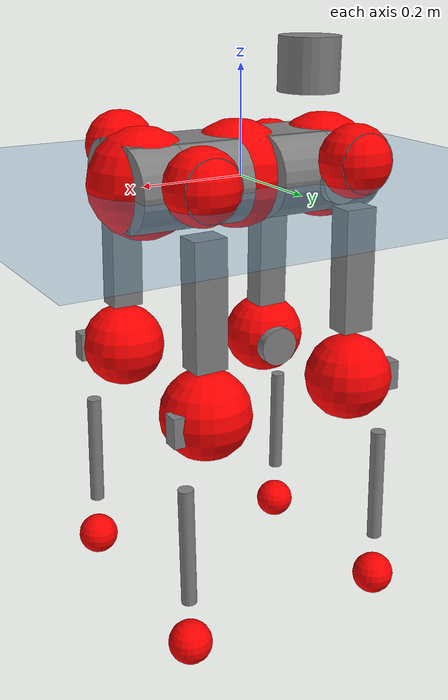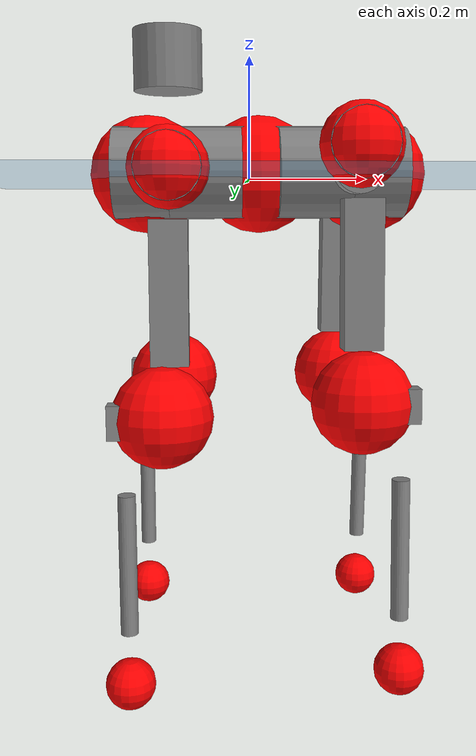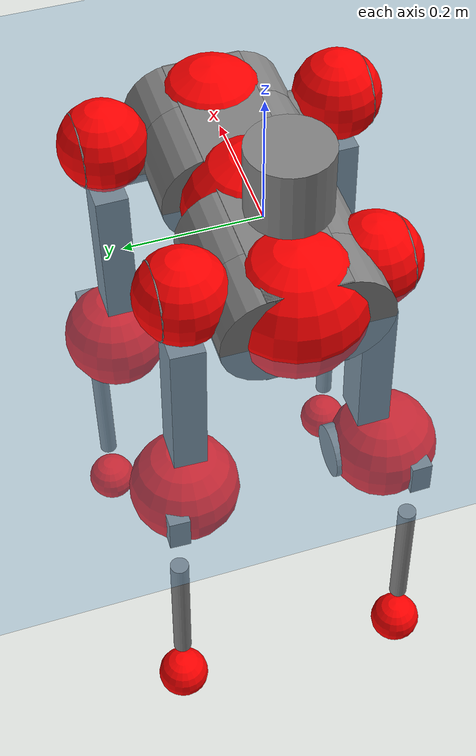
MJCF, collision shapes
<mujoco model="anymal_c">
  <compiler angle="radian" assetdir="assets" balanceinertia="true" inertiafromgeom="false"/>

  <option timestep="0.005" density="1.2" viscosity="2e-05"/>

  <size nkey="1"/>

  <visual>
    <quality shadowsize="8192"/>
    <map shadowclip="0.5"/>
  </visual>

  <default>
    <default class="/">
      <material specular="0" shininess="0.25"/>
      <geom contype="0" conaffinity="0" group="1" solref="-1000 -80"/>
      <site size="0.01 0.005 0.005" group="5"/>
      <general forcelimited="true" forcerange="-80 80" biastype="affine" gainprm="80" biasprm="0 -80 -2"/>
      <default class="anymal_c">
        <joint armature="0.01" damping="0.01" frictionloss="0.1"/>
        <default class="visual">
          <geom type="mesh" group="2"/>
          <default class="visual_zflip"/>
        </default>
        <default class="collision">
          <geom type="cylinder" group="3"/>
          <default class="foot">
            <geom size="0.03 0 0" type="sphere" condim="6" priority="1" friction="0.8 0.02 0.01" solimp="0.015 1 0.03"/>
          </default>
        </default>
      </default>
      <default class="reward_collision_sphere">
        <geom group="5" rgba="1 0 0 1"/>
      </default>
    </default>
  </default>

  <asset>
    <texture type="skybox" colorspace="auto" name="//unnamed_texture_0" builtin="gradient" rgb1="0.95 0.95 0.95" rgb2="0.95 0.95 0.95" width="100" height="600"/>
    <texture type="2d" colorspace="auto" name="texplane" builtin="checker" rgb1="0.345 0.575 0.748" rgb2="0.345 0.575 0.748" markrgb="1 1 1" width="512" height="512"/>
    <texture type="2d" colorspace="linear" name="base" file="base.png"/>
    <texture type="2d" colorspace="linear" name="top_shell" file="top_shell.png"/>
    <texture type="2d" colorspace="linear" name="bottom_shell" file="bottom_shell.png"/>
    <texture type="2d" colorspace="linear" name="remote" file="remote.png"/>
    <texture type="2d" colorspace="linear" name="hatch" file="hatch.png"/>
    <texture type="2d" colorspace="linear" name="handle" file="handle.png"/>
    <texture type="2d" colorspace="linear" name="face" file="face.png"/>
    <texture type="2d" colorspace="linear" name="battery" file="battery.png"/>
    <texture type="2d" colorspace="linear" name="lidar_cage" file="lidar_cage.png"/>
    <texture type="2d" colorspace="linear" name="depth_camera" file="depth_camera.png"/>
    <texture type="2d" colorspace="linear" name="wide_angle_camera" file="wide_angle_camera.png"/>
    <texture type="2d" colorspace="linear" name="lidar" file="lidar.png"/>
    <texture type="2d" colorspace="linear" name="drive" file="drive.png"/>
    <texture type="2d" colorspace="linear" name="hip_l" file="hip_l.png"/>
    <texture type="2d" colorspace="linear" name="shank_l" file="shank_l.png"/>
    <texture type="2d" colorspace="linear" name="foot" file="foot.png"/>
    <texture type="2d" colorspace="linear" name="thigh" file="thigh.png"/>
    <texture type="2d" colorspace="linear" name="shank_r" file="shank_r.png"/>
    <texture type="2d" colorspace="linear" name="hip_r" file="hip_r.png"/>
    <material name="MatPlane" class="/" texture="texplane" texuniform="true" texrepeat="2 2" specular="0.9" shininess="0.5"/>
    <material name="black_plastic" class="/" rgba="0.007 0.007 0.007 1"/>
    <material name="green" class="/" rgba="0.052 0.178 0.033 1"/>
    <material name="red" class="/" rgba="0.178 0.006 0.005 1"/>
    <material name="yellow" class="/" rgba="0.178 0.119 0.006 1"/>
    <material name="lwl" class="/" rgba="0.8 0.8 0.8 1"/>
    <material name="base" class="/" texture="base"/>
    <material name="top_shell" class="/" texture="top_shell"/>
    <material name="bottom_shell" class="/" texture="bottom_shell"/>
    <material name="hip_l" class="/" texture="hip_l"/>
    <material name="thigh" class="/" texture="thigh"/>
    <material name="shank_l" class="/" texture="shank_l"/>
    <material name="foot" class="/" texture="foot"/>
    <material name="hip_r" class="/" texture="hip_r"/>
    <material name="shank" class="/" texture="shank_r"/>
    <material name="hatch" class="/" texture="hatch"/>
    <material name="remote" class="/" texture="remote"/>
    <material name="handle" class="/" texture="handle"/>
    <material name="face" class="/" texture="face"/>
    <material name="depth_camera" class="/" texture="depth_camera"/>
    <material name="wide_angle_camera" class="/" texture="wide_angle_camera"/>
    <material name="battery" class="/" texture="battery"/>
    <material name="lidar_cage" class="/" texture="lidar_cage"/>
    <material name="lidar" class="/" texture="lidar"/>
    <material name="drive" class="/" texture="drive"/>
    <mesh name="base_0" class="/" file="base_0.obj"/>
    <mesh name="base_1" class="/" file="base_1.obj"/>
    <mesh name="base_2" class="/" file="base_2.obj"/>
    <mesh name="base_3" class="/" file="base_3.obj"/>
    <mesh name="base_4" class="/" file="base_4.obj"/>
    <mesh name="base_5" class="/" file="base_5.obj"/>
    <mesh name="top_shell" class="/" file="top_shell.obj"/>
    <mesh name="bottom_shell" class="/" file="bottom_shell.obj"/>
    <mesh name="remote" class="/" file="remote.obj"/>
    <mesh name="handle" class="/" file="handle.obj"/>
    <mesh name="face" class="/" file="face.obj"/>
    <mesh name="wide_angle_camera" class="/" file="wide_angle_camera.obj"/>
    <mesh name="depth_camera" class="/" file="depth_camera.obj"/>
    <mesh name="battery" class="/" file="battery.obj"/>
    <mesh name="lidar_cage" class="/" file="lidar_cage.obj"/>
    <mesh name="lidar" class="/" file="lidar.obj"/>
    <mesh name="drive" class="/" file="drive.obj"/>
    <mesh name="hip_l" class="/" file="hip_l.obj"/>
    <mesh name="thigh" class="/" file="thigh.obj"/>
    <mesh name="shank_l" class="/" file="shank_l.obj"/>
    <mesh name="foot" class="/" file="foot.obj"/>
    <mesh name="hip_r" class="/" file="hip_r.obj"/>
    <mesh name="hatch" class="/" file="hatch.obj"/>
    <mesh name="shank_r" class="/" file="shank_r.obj"/>
  </asset>

  <worldbody>
    <geom name="floor" class="/" size="100 100 0.125" type="plane" group="0" material="MatPlane"/>
    <light name="toplight_shadow" class="/" pos="0 0 5" dir="0.0990148 0.0990148 -0.990148" type="directional" ambient="0.04 0.04 0.04" diffuse="0.55 0.55 0.55" specular="0.12 0.12 0.12"/>
    <light name="toplight_fill" class="/" pos="0 0 5" dir="0.0990148 0.0990148 -0.990148" type="directional" castshadow="false" ambient="0.04 0.04 0.04" diffuse="0.3 0.3 0.3" specular="0.08 0.08 0.08"/>
    <body name="trunk" childclass="anymal_c" pos="0.0158876 0.0116873 0.00776454" quat="0.999978 -0.00433499 -0.00226051 -0.00447106">
      <inertial pos="0.0176186 0.00295528 0.0726689" quat="0.474721 0.502691 0.493309 0.527814" mass="10.0862" diaginertia="0.00884842 0.0757931 0.981711"/>
      <joint name="//unnamed_joint_0" type="free" armature="0" damping="0" frictionloss="0"/>
      <geom name="//unnamed_geom_1" class="visual" material="green" mesh="base_0"/>
      <geom name="//unnamed_geom_2" class="visual" material="yellow" mesh="base_1"/>
      <geom name="//unnamed_geom_3" class="visual" material="red" mesh="base_2"/>
      <geom name="//unnamed_geom_4" class="visual" material="black_plastic" mesh="base_3"/>
      <geom name="//unnamed_geom_5" class="visual" material="lwl" mesh="base_4"/>
      <geom name="//unnamed_geom_6" class="visual" material="base" mesh="base_5"/>
      <geom name="trunk_1" class="collision" size="0.239543 0.0578208 0.074341" type="box"/>
      <geom name="trunk_2" class="collision" size="0.074341 0.0598858" pos="0.0907165 0.0461263 0" quat="0.707107 0 0.707107 0"/>
      <geom name="trunk_3" class="collision" size="0.074341 0.0598858" pos="-0.0907165 0.0461263 0" quat="0.707107 0 0.707107 0"/>
      <geom name="trunk_4" class="collision" size="0.074341 0.0598858" pos="0.0907165 -0.0461263 0" quat="0.707107 0 0.707107 0"/>
      <geom name="trunk_5" class="collision" size="0.074341 0.0598858" pos="-0.0907165 -0.0461263 0" quat="0.707107 0 0.707107 0"/>
      <geom name="//unnamed_geom_12" class="visual" material="top_shell" mesh="top_shell"/>
      <geom name="//unnamed_geom_13" class="visual" material="bottom_shell" mesh="bottom_shell"/>
      <geom name="//unnamed_geom_14" class="visual" material="remote" mesh="remote"/>
      <geom name="//unnamed_geom_15" class="visual" material="handle" mesh="handle"/>
      <geom name="//unnamed_geom_16" class="visual" pos="0.172883 0 0" quat="1 0 0 0" material="face" mesh="face"/>
      <geom name="trunk_6" class="collision" size="0.0454306 0.0578208 0.074341" pos="0.195822 0 0" type="box"/>
      <geom name="//unnamed_geom_18" class="collision" size="0.074341 0.0454306" pos="0.195822 0.0461263 0" quat="0.707107 0 0.707107 0"/>
      <geom name="//unnamed_geom_19" class="collision" size="0.074341 0.0454306" pos="0.195822 -0.0461263 0" quat="0.707107 0 0.707107 0"/>
      <geom name="//unnamed_geom_20" class="visual" pos="0.192589 0 -0.0484238" quat="0.965926 0 0.258819 0" material="depth_camera" mesh="depth_camera"/>
      <geom name="//unnamed_geom_21" class="visual" pos="0.213966 0 0.020988" material="wide_angle_camera" mesh="wide_angle_camera"/>
      <geom name="//unnamed_geom_22" class="visual_zflip" pos="-0.172883 0 0" quat="0 0 0 1" material="face" mesh="face"/>
      <geom name="trunk_7" class="collision" size="0.0454306 0.0578208 0.074341" pos="-0.195822 0 0" quat="0 0 0 1" type="box"/>
      <geom name="//unnamed_geom_24" class="collision" size="0.074341 0.0454306" pos="-0.195822 -0.0461263 0" quat="0 -0.707107 0 0.707107"/>
      <geom name="//unnamed_geom_25" class="collision" size="0.074341 0.0454306" pos="-0.195822 0.0461263 0" quat="0 -0.707107 0 0.707107"/>
      <geom name="//unnamed_geom_26" class="visual" pos="-0.192589 0 -0.0484238" quat="0 -0.258819 0 0.965926" material="depth_camera" mesh="depth_camera"/>
      <geom name="//unnamed_geom_27" class="visual_zflip" pos="-0.213966 0 0.020988" quat="0 0 0 1" material="wide_angle_camera" mesh="wide_angle_camera"/>
      <geom name="//unnamed_geom_28" class="visual" material="battery" mesh="battery"/>
      <geom name="//unnamed_geom_29" class="visual" pos="0 0.0535976 0.0332428" quat="0.683013 -0.183013 0.183013 0.683013" material="depth_camera" mesh="depth_camera"/>
      <geom name="//unnamed_geom_30" class="visual" pos="0 -0.0535976 0.0332428" quat="0.683013 0.183013 0.183013 -0.683013" material="depth_camera" mesh="depth_camera"/>
      <geom name="//unnamed_geom_31" class="visual" pos="-0.15182 0 0.103047" quat="1 0 0 0" material="lidar_cage" mesh="lidar_cage"/>
      <geom name="trunk_8" class="collision" size="0.0578208 0.0495607" pos="-0.15182 0 0.187167"/>
      <geom name="//unnamed_geom_33" class="visual" pos="-0.15182 9.502e-05 0.199365" quat="0.707107 0 0 -0.707107" material="lidar" mesh="lidar"/>
      <geom name="//unnamed_geom_34" class="visual" pos="0.125084 0.0687944 -1.28178e-08" quat="0.258819 0.965926 0 0" material="drive" mesh="drive"/>
      <geom name="//unnamed_geom_35" class="visual" pos="0.125084 -0.0687944 1.28178e-08" quat="0.258819 -0.965926 0 0" material="drive" mesh="drive"/>
      <geom name="//unnamed_geom_36" class="visual" pos="-0.125084 0.0687944 1.28178e-08" quat="0 0 0.965926 -0.258819" material="drive" mesh="drive"/>
      <geom name="//unnamed_geom_37" class="visual" pos="-0.125084 -0.0687944 -1.28178e-08" quat="0 0 -0.965926 -0.258819" material="drive" mesh="drive"/>
      <geom name="//unnamed_geom_38" class="visual" pos="0.0483821 0 0.102346" quat="1 0 0 0" material="hatch" mesh="hatch"/>
      <geom name="//unnamed_geom_39" class="reward_collision_sphere" size="0.0991214"/>
      <geom name="//unnamed_geom_40" class="reward_collision_sphere" size="0.0991214" pos="0.187689 0 0"/>
      <geom name="//unnamed_geom_41" class="reward_collision_sphere" size="0.0991214" pos="-0.187689 0 0"/>
      <site name="imu" pos="0.0947368 -0.0314894 0.0956901" size="0.00826012"/>
      <camera name="track" pos="0 -1.31789 0" quat="0.707107 0.707107 0 0" mode="trackcom"/>
      <camera name="ego_camera" pos="0.187689 0 -0.05608" quat="-0.5 -0.5 0.5 0.5"/>
      <body name="LF_HIP" pos="0.135618 0.0793385 -0.00785588" quat="0.258061 0.966096 0.00723354 -0.00318032">
        <inertial pos="0.0404567 -0.000592835 -0.0020333" quat="-0.139991 0.70903 -0.137122 0.677404" mass="1.35203" diaginertia="6.41385e-05 0.000598155 0.0128737"/>
        <joint name="LF_HAA" pos="0 0 0" axis="0.999759 0.0114408 0.0187308" stiffness="0.0354114" range="-0.666828 0.771568" armature="0.00308468" damping="0.0636696" frictionloss="0.0488934"/>
        <geom name="//unnamed_geom_42" class="visual" pos="0 -0.000754011 0.000123846" quat="0.258819 -0.965926 0 0" material="hip_l" mesh="hip_l"/>
        <geom name="//unnamed_geom_43" class="visual" pos="0.0249835 -0.0337213 -0.024965" quat="0.183013 -0.683013 0.683013 0.183013" material="drive" mesh="drive"/>
        <geom name="//unnamed_geom_44" class="collision" size="0.0413006 0.0578208" pos="0.0249835 -0.00788087 -0.00968082" quat="-0.353553 -0.612372 0.612372 -0.353553"/>
        <body name="LF_THIGH" pos="0.0262479 -0.0521267 -0.066284" quat="0.183184 -0.683013 0.683163 0.182277">
          <inertial pos="-0.00298555 -0.00321444 -0.359072" quat="0.993269 -0.00733561 -0.0892838 0.0734277" mass="1.84088" diaginertia="0.000393626 0.00340119 0.0246206"/>
          <joint name="LF_HFE" pos="0 0 0" axis="0.99904 0.0166859 0.0404951" range="-2.87385 2.88769" armature="0.00334439" damping="0.087655" frictionloss="0.0449901"/>
          <geom name="//unnamed_geom_45" class="visual" pos="-0.00481205 -7.58266e-06 0" quat="0.707107 0 0 -0.707107" material="thigh" mesh="thigh"/>
          <geom name="//unnamed_geom_46" class="collision" size="0.0536907 0.0330405" pos="0.0166835 0 0" quat="0.5 0.5 -0.5 -0.5"/>
          <geom name="//unnamed_geom_47" class="collision" size="0.0309754 0.0247803 0.116727" pos="0.0125126 0 -0.198122" quat="0.707107 0 0 -0.707107" type="box"/>
          <geom name="//unnamed_geom_48" class="visual" pos="0.0418339 0 -0.39957" quat="1 0 0 0" material="drive" mesh="drive"/>
          <geom name="//unnamed_geom_49" class="collision" size="0.0413006 0.0578208" pos="0.0126377 0 -0.39957" quat="0.707107 0 0.707107 0"/>
          <geom name="//unnamed_geom_50" class="reward_collision_sphere" size="0.0660809" pos="0.0104272 0 0"/>
          <body name="LF_SHANK" pos="0.0427075 -0.00530123 -0.396815" quat="0.999985 0.0040397 -0.00286919 -0.00244038">
            <inertial pos="-0.00798359 -0.049811 -0.100737" quat="0.985627 -0.167079 -0.00582173 0.024283" mass="0.308105" diaginertia="0.000140517 0.00102355 0.00696993"/>
            <joint name="LF_KFE" pos="0 0 0" axis="0.999629 0.00421261 -0.0269051" range="-3.07987 3.41409" armature="0.0127635" damping="0.0125836" frictionloss="0.0993051"/>
            <geom name="//unnamed_geom_51" class="visual" pos="-0.0015691 -0.00836654 0" quat="0.707107 0 0 -0.707107" material="shank_l" mesh="shank_l"/>
            <geom name="LF_kfe_act" class="collision" size="0.0495607 0.0165202" pos="0.00834175 0 0" quat="0.5 0.5 -0.5 -0.5"/>
            <geom name="//unnamed_geom_53" class="collision" size="0.0474948 0.0278779 0.0156942" pos="0.00834175 -0.0378888 0" quat="0.5 0.5 -0.5 -0.5" type="box"/>
            <geom name="//unnamed_geom_54" class="visual" pos="0.00544337 -0.0606505 -0.473834" quat="0.382683 0 0 -0.92388" material="foot" mesh="foot"/>
            <geom name="LF_calf" class="collision" size="0.0144552 0.116676" pos="0.00544299 -0.0579543 -0.236917" quat="0.707107 0 0 -0.707107"/>
            <geom name="LF_foot" class="foot" size="0.0195129" pos="0.00544299 -0.0579543 -0.442289" quat="0.707107 0 0 -0.707107"/>
            <geom name="//unnamed_geom_57" class="reward_collision_sphere" size="0.0826012" pos="-0.0208544 0 0"/>
            <geom name="//unnamed_geom_58" class="reward_collision_sphere" size="0.0413006" pos="0.00544299 -0.0579543 -0.442289"/>
            <site name="LF_foot" class="foot" pos="0.00544299 -0.0579543 -0.442289" quat="0.707107 0 0 -0.707107" size="0.00826012"/>
          </body>
        </body>
      </body>
      <body name="RF_HIP" pos="0.127492 -0.0823562 -0.000445096" quat="0.262183 -0.965014 -0.00238049 -0.00109184">
        <inertial pos="0.0107432 0.00394442 -0.011661" quat="0.146113 0.678734 0.124513 0.70885" mass="1.03932" diaginertia="6.66304e-05 0.000557308 0.0172953"/>
        <joint name="RF_HAA" pos="0 0 0" axis="0.999997 0.00129555 0.00200618" stiffness="0.025546" range="-0.689843 0.691382" armature="0.0151941" damping="0.0174118" frictionloss="0.0161563"/>
        <geom name="//unnamed_geom_59" class="visual" pos="0 0.000754005 0.000123845" quat="0.258819 0.965926 0 0" material="hip_r" mesh="hip_r"/>
        <geom name="//unnamed_geom_60" class="visual" pos="0.0249835 0.0337213 -0.024965" quat="0.183013 0.683013 0.683013 -0.183013" material="drive" mesh="drive"/>
        <geom name="//unnamed_geom_61" class="collision" size="0.0413006 0.0578208" pos="0.0249835 0.00788087 -0.00968082" quat="-0.353553 0.612372 0.612372 0.353553"/>
        <body name="RF_THIGH" pos="0.0225699 0.0540973 -0.0732267" quat="0.186877 0.682759 0.680516 -0.18925">
          <inertial pos="0.0248335 0.0166421 -0.338135" quat="0.991443 -0.00724924 -0.073655 0.107537" mass="2.29093" diaginertia="0.000412457 0.00448035 0.0288269"/>
          <joint name="RF_HFE" pos="0 0 0" axis="0.999741 -0.0160448 -0.0161281" stiffness="0.0158698" range="-3.00939 3.29058" armature="0.00832904" damping="0.00687569" frictionloss="0.0486314"/>
          <geom name="//unnamed_geom_62" class="visual" pos="-0.00481205 -7.58266e-06 0" quat="0.707107 0 0 -0.707107" material="thigh" mesh="thigh"/>
          <geom name="//unnamed_geom_63" class="collision" size="0.0536907 0.0330405" pos="0.0166835 0 0" quat="0.5 0.5 0.5 0.5"/>
          <geom name="//unnamed_geom_64" class="collision" size="0.0309754 0.0247803 0.116727" pos="0.0125126 0 -0.198122" quat="0.707107 0 0 0.707107" type="box"/>
          <geom name="//unnamed_geom_65" class="visual" pos="0.0418339 0 -0.39957" quat="1 0 0 0" material="drive" mesh="drive"/>
          <geom name="//unnamed_geom_66" class="collision" size="0.0413006 0.0578208" pos="0.0126377 0 -0.39957" quat="0.707107 0 0.707107 0"/>
          <geom name="//unnamed_geom_67" class="reward_collision_sphere" size="0.0660809" pos="0.0104272 0 0"/>
          <body name="RF_SHANK" pos="0.0305865 0.00230941 -0.401413" quat="1 0.00011367 -1.04733e-05 -0.000168307">
            <inertial pos="-0.00717745 0.0402444 -0.106841" quat="0.992592 0.117115 0.0193402 0.0259023" mass="0.254919" diaginertia="8.81574e-05 0.00109783 0.00490073"/>
            <joint name="RF_KFE" pos="0 0 0" axis="0.997869 -0.030454 0.0577006" stiffness="0.0512671" range="-3.13942 3.2111" armature="0.00715189" damping="0" frictionloss="0.0584408"/>
            <geom name="//unnamed_geom_68" class="visual" pos="-0.00156909 0.00836652 0" quat="0.707107 0 0 0.707107" material="shank" mesh="shank_r"/>
            <geom name="RF_kfe_act" class="collision" size="0.0495607 0.0165202" pos="0.00834175 0 0" quat="0.5 0.5 0.5 0.5"/>
            <geom name="//unnamed_geom_70" class="collision" size="0.0474948 0.0278779 0.0156942" pos="0.00834175 0.0378888 0" quat="0.5 0.5 0.5 0.5" type="box"/>
            <geom name="//unnamed_geom_71" class="visual" pos="0.00544261 0.0606505 -0.473834" quat="0.382683 0 0 0.92388" material="foot" mesh="foot"/>
            <geom name="RF_calf" class="collision" size="0.0144552 0.116676" pos="0.00544299 0.0579543 -0.236917" quat="0.707107 0 0 0.707107"/>
            <geom name="RF_foot" class="foot" size="0.0264554" pos="0.00544299 0.0579543 -0.442289" quat="0.707107 0 0 0.707107"/>
            <geom name="//unnamed_geom_74" class="reward_collision_sphere" size="0.0826012" pos="-0.0208544 0 0"/>
            <geom name="//unnamed_geom_75" class="reward_collision_sphere" size="0.0413006" pos="0.00544299 0.0579543 -0.442289"/>
            <site name="RF_foot" class="foot" pos="0.00544299 0.0579543 -0.442289" quat="0.707107 0 0 0.707107" size="0.00826012"/>
          </body>
        </body>
      </body>
      <body name="LH_HIP" pos="-0.120463 0.063843 -0.010116" quat="-0.00533099 0.00510636 0.967138 -0.254145">
        <inertial pos="0.00774857 0.0152791 -0.0149132" quat="0.135934 0.680288 0.125118 0.709278" mass="1.41741" diaginertia="7.23734e-05 0.000503138 0.0185825"/>
        <joint name="LH_HAA" pos="0 0 0" axis="0.999642 0.00562948 0.026149" range="-0.394742 0.642339" armature="0.00765665" damping="0.017571" frictionloss="0.0509435"/>
        <geom name="//unnamed_geom_76" class="visual" pos="0 0.000754005 0.000123845" quat="-0.258819 -0.965926 0 0" material="hip_r" mesh="hip_r"/>
        <geom name="//unnamed_geom_77" class="visual" pos="0.0249835 0.0337213 -0.024965" quat="0.183013 0.683013 0.683013 -0.183013" material="drive" mesh="drive"/>
        <geom name="//unnamed_geom_78" class="collision" size="0.0413006 0.0578208" pos="0.0249835 0.00788087 -0.00968082" quat="-0.353553 0.612372 0.612372 0.353553"/>
        <body name="LH_THIGH" pos="0.0402594 0.0395824 -0.0708711" quat="0.185908 0.679872 0.68362 -0.18941">
          <inertial pos="0.0144644 0.00481954 -0.339693" quat="0.990561 -0.0760731 -0.0796045 0.081633" mass="2.01059" diaginertia="0.000348876 0.00427641 0.0205235"/>
          <joint name="LH_HFE" pos="0 0 0" axis="1 -0.000379632 0.000386925" range="-3.05817 3.16251" armature="0.0123493" damping="0.0880529" frictionloss="0.112462"/>
          <geom name="//unnamed_geom_79" class="visual" pos="-0.00481205 -7.58266e-06 0" quat="0.707107 0 0 -0.707107" material="thigh" mesh="thigh"/>
          <geom name="//unnamed_geom_80" class="collision" size="0.0536907 0.0330405" pos="0.0166835 0 0" quat="0.5 0.5 -0.5 -0.5"/>
          <geom name="//unnamed_geom_81" class="collision" size="0.0309754 0.0247803 0.116727" pos="0.0125126 0 -0.198122" quat="0.707107 0 0 -0.707107" type="box"/>
          <geom name="//unnamed_geom_82" class="visual" pos="0.0418339 0 -0.39957" quat="1 0 0 0" material="drive" mesh="drive"/>
          <geom name="//unnamed_geom_83" class="collision" size="0.0413006 0.0578208" pos="0.0126377 0 -0.39957" quat="0.707107 0 0.707107 0"/>
          <geom name="//unnamed_geom_84" class="reward_collision_sphere" size="0.0660809" pos="0.0104272 0 0"/>
          <body name="LH_SHANK" pos="0.0350282 -0.00441688 -0.408572" quat="1 0.000569337 3.8199e-05 -0.000411016">
            <inertial pos="0.00196266 0.0406422 -0.123162" quat="0.992943 0.115803 -0.000850046 0.0255623" mass="0.334135" diaginertia="0.000127809 0.00110729 0.00619133"/>
            <joint name="LH_KFE" pos="0 0 0" axis="0.999997 -0.001232 0.00226528" stiffness="0.0127361" range="-3.02199 3.12078" armature="0.0123993" damping="0.0760656" frictionloss="0.0897024"/>
            <geom name="//unnamed_geom_85" class="visual" pos="-0.00156909 0.00836652 0" quat="-0.707107 0 0 -0.707107" material="shank" mesh="shank_r"/>
            <geom name="LH_kfe_act" class="collision" size="0.0495607 0.0165202" pos="0.00834175 0 0" quat="0.5 0.5 -0.5 -0.5"/>
            <geom name="//unnamed_geom_87" class="collision" size="0.0474948 0.0278779 0.0156942" pos="0.00834175 0.0378888 0" quat="0.5 0.5 -0.5 -0.5" type="box"/>
            <geom name="//unnamed_geom_88" class="visual" pos="0.00544261 0.0606505 -0.473834" quat="-0.382683 0 0 -0.92388" material="foot" mesh="foot"/>
            <geom name="LH_calf" class="collision" size="0.0144552 0.116676" pos="0.00544299 0.0579543 -0.236917" quat="0.707107 0 0 -0.707107"/>
            <geom name="LH_foot" class="foot" size="0.014" pos="0.00544299 0.0579543 -0.442289" quat="0.707107 0 0 -0.707107"/>
            <geom name="//unnamed_geom_91" class="reward_collision_sphere" size="0.0826012" pos="-0.0208544 0 0"/>
            <geom name="//unnamed_geom_92" class="reward_collision_sphere" size="0.0413006" pos="0.00544299 0.0579543 -0.442289"/>
            <site name="LH_foot" class="foot" pos="0.00544299 0.0579543 -0.442289" quat="0.707107 0 0 -0.707107" size="0.00826012"/>
          </body>
        </body>
      </body>
      <body name="RH_HIP" pos="-0.125619 -0.0530523 -0.0129589" quat="0.00579243 0.000259743 -0.966253 -0.25753">
        <inertial pos="0.0240761 -0.023064 -0.011192" quat="-0.101492 0.726276 -0.196379 0.65089" mass="1.60878" diaginertia="6.57692e-05 0.000538526 0.0199469"/>
        <joint name="RH_HAA" pos="0 0 0" axis="0.999728 -0.00997118 -0.0210771" range="-0.811031 0.476949" armature="0.00100537" damping="0" frictionloss="0.141078"/>
        <geom name="//unnamed_geom_93" class="visual" pos="0 -0.000754011 0.000123846" quat="-0.258819 0.965926 0 0" material="hip_l" mesh="hip_l"/>
        <geom name="//unnamed_geom_94" class="visual" pos="0.0249835 -0.0337213 -0.024965" quat="-0.183013 0.683013 -0.683013 -0.183013" material="drive" mesh="drive"/>
        <geom name="//unnamed_geom_95" class="collision" size="0.0413006 0.0578208" pos="0.0249835 -0.00788087 -0.00968082" quat="0.353553 0.612372 -0.612372 0.353553"/>
        <body name="RH_THIGH" pos="0.0235827 -0.0430927 -0.0453627" quat="-0.18665 0.681311 -0.683349 -0.184421">
          <inertial pos="0.0125202 0.0089973 -0.346731" quat="0.992841 -0.00551144 -0.0822534 0.086439" mass="2.10488" diaginertia="0.000459958 0.00409936 0.029399"/>
          <joint name="RH_HFE" pos="0 0 0" axis="0.999682 -0.0187766 0.0168389" stiffness="0.0571251" range="-2.84199 2.93" armature="0.0046178" damping="0.0311026" frictionloss="0.107559"/>
          <geom name="//unnamed_geom_96" class="visual" pos="-0.00481205 -7.58266e-06 0" quat="0.707107 0 0 -0.707107" material="thigh" mesh="thigh"/>
          <geom name="//unnamed_geom_97" class="collision" size="0.0536907 0.0330405" pos="0.0166835 0 0" quat="0.5 0.5 0.5 0.5"/>
          <geom name="//unnamed_geom_98" class="collision" size="0.0309754 0.0247803 0.116727" pos="0.0125126 0 -0.198122" quat="0.707107 0 0 0.707107" type="box"/>
          <geom name="//unnamed_geom_99" class="visual" pos="0.0418339 0 -0.39957" quat="1 0 0 0" material="drive" mesh="drive"/>
          <geom name="//unnamed_geom_100" class="collision" size="0.0413006 0.0578208" pos="0.0126377 0 -0.39957" quat="0.707107 0 0.707107 0"/>
          <geom name="//unnamed_geom_101" class="reward_collision_sphere" size="0.0660809" pos="0.0104272 0 0"/>
          <body name="RH_SHANK" pos="0.0598287 -0.0122561 -0.396077" quat="0.999997 0.00124593 0.000386132 0.00199689">
            <inertial pos="-0.0149397 -0.0398746 -0.122879" quat="0.992714 -0.111616 -0.0394964 -0.022387" mass="0.315266" diaginertia="0.000135496 0.00158873 0.00626936"/>
            <joint name="RH_KFE" pos="0 0 0" axis="0.999713 0.00240138 -0.0238217" range="-3.38139 2.78969" armature="0.0141711" damping="0" frictionloss="0.0568864"/>
            <geom name="//unnamed_geom_102" class="visual" pos="-0.0015691 -0.00836654 0" quat="0.707107 0 0 -0.707107" material="shank_l" mesh="shank_l"/>
            <geom name="RH_kfe_act" class="collision" size="0.0495607 0.0165202" pos="0.00834175 0 0" quat="0.5 0.5 0.5 0.5"/>
            <geom name="//unnamed_geom_104" class="collision" size="0.0474948 0.0278779 0.0156942" pos="0.00834175 -0.0378888 0" quat="0.5 0.5 0.5 0.5" type="box"/>
            <geom name="//unnamed_geom_105" class="visual" pos="0.00544337 -0.0606505 -0.473834" quat="0.382683 0 0 -0.92388" material="foot" mesh="foot"/>
            <geom name="RH_calf" class="collision" size="0.0144552 0.116676" pos="0.00544299 -0.0579543 -0.236917" quat="0.707107 0 0 0.707107"/>
            <geom name="RH_foot" class="foot" size="0.0269507" pos="0.00544299 -0.0579543 -0.442289" quat="0.707107 0 0 0.707107"/>
            <geom name="//unnamed_geom_108" class="reward_collision_sphere" size="0.0826012" pos="-0.0208544 0 0"/>
            <geom name="//unnamed_geom_109" class="reward_collision_sphere" size="0.0413006" pos="0.00544299 -0.0579543 -0.442289"/>
            <site name="RH_foot" class="foot" pos="0.00544299 -0.0579543 -0.442289" quat="0.707107 0 0 0.707107" size="0.00826012"/>
          </body>
        </body>
      </body>
    </body>
  </worldbody>

  <contact>
    <pair class="/" geom1="floor" geom2="LF_foot" name="//unnamed_contact_0"/>
    <pair class="/" geom1="floor" geom2="RF_foot" name="//unnamed_contact_1"/>
    <pair class="/" geom1="floor" geom2="LH_foot" name="//unnamed_contact_2"/>
    <pair class="/" geom1="floor" geom2="RH_foot" name="//unnamed_contact_3"/>
  </contact>

  <actuator>
    <general name="LF_HAA" class="/" joint="LF_HAA" forcerange="-72.5835 72.5835" gainprm="64.5332" biasprm="0 -64.5332 -1.61079"/>
    <general name="LF_HFE" class="/" joint="LF_HFE" forcerange="-89.4745 89.4745" gainprm="64.5332" biasprm="0 -64.5332 -1.61079"/>
    <general name="LF_KFE" class="/" joint="LF_KFE" forcerange="-68.7935 68.7935" gainprm="64.5332" biasprm="0 -64.5332 -1.61079"/>
    <general name="RF_HAA" class="/" joint="RF_HAA" forcerange="-24.1499 24.1499" gainprm="64.5332" biasprm="0 -64.5332 -1.61079"/>
    <general name="RF_HFE" class="/" joint="RF_HFE" forcerange="-65.5016 65.5016" gainprm="64.5332" biasprm="0 -64.5332 -1.61079"/>
    <general name="RF_KFE" class="/" joint="RF_KFE" forcerange="-96.5871 96.5871" gainprm="64.5332" biasprm="0 -64.5332 -1.61079"/>
    <general name="LH_HAA" class="/" joint="LH_HAA" forcerange="-75.04 75.04" gainprm="64.5332" biasprm="0 -64.5332 -1.61079"/>
    <general name="LH_HFE" class="/" joint="LH_HFE" forcerange="-75.3764 75.3764" gainprm="64.5332" biasprm="0 -64.5332 -1.61079"/>
    <general name="LH_KFE" class="/" joint="LH_KFE" forcerange="-60.2034 60.2034" gainprm="64.5332" biasprm="0 -64.5332 -1.61079"/>
    <general name="RH_HAA" class="/" joint="RH_HAA" forcerange="-56.8029 56.8029" gainprm="64.5332" biasprm="0 -64.5332 -1.61079"/>
    <general name="RH_HFE" class="/" joint="RH_HFE" forcerange="-82.8387 82.8387" gainprm="64.5332" biasprm="0 -64.5332 -1.61079"/>
    <general name="RH_KFE" class="/" joint="RH_KFE" forcerange="-29.181 29.181" gainprm="64.5332" biasprm="0 -64.5332 -1.61079"/>
  </actuator>

  <sensor>
    <gyro site="imu" name="imu_angular_velocity"/>
    <velocimeter site="imu" name="imu_linear_velocity"/>
    <framelinvel objtype="site" objname="LF_foot" name="LF_foot_global_linear_velocity"/>
    <framelinvel objtype="site" objname="RF_foot" name="RF_foot_global_linear_velocity"/>
    <framelinvel objtype="site" objname="LH_foot" name="LH_foot_global_linear_velocity"/>
    <framelinvel objtype="site" objname="RH_foot" name="RH_foot_global_linear_velocity"/>
  </sensor>

  <keyframe>
    <key name="home" qpos="0 0 0.55 1 0 0 0 0 0.4 -0.8 0 -0.4 0.8 0 -0.4 0.8 0 0.4 -0.8"/>
  </keyframe>
</mujoco>
